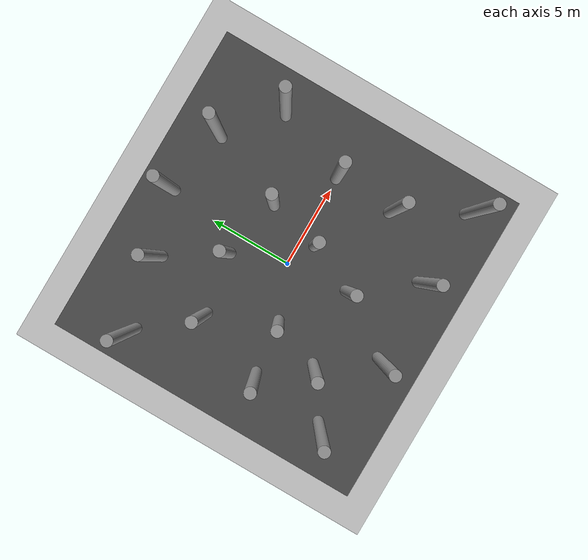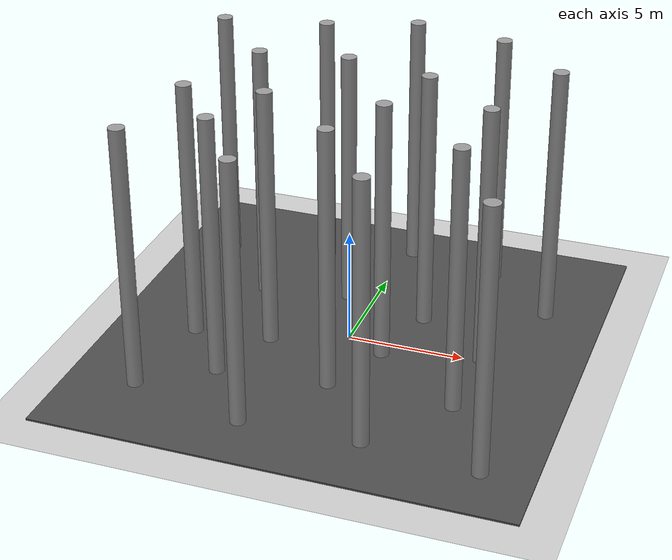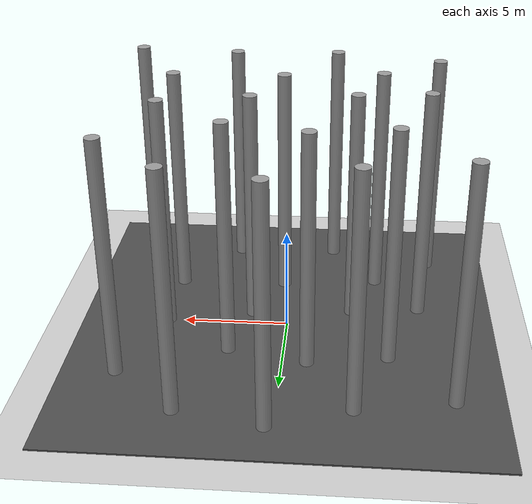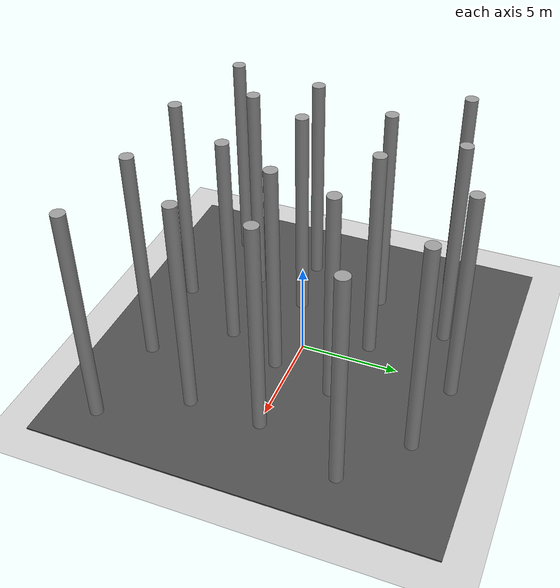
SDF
<sdf version="1.7">
 <world name="default">
  <light name="sun" type="directional">
   <pose>0 0 10 0 -0 0</pose>
   <diffuse>0.8 0.8 0.8 1</diffuse>
   <specular>0.2 0.2 0.2 1</specular>
   <attenuation>
    <range>1000</range>
    <constant>0.9</constant>
    <linear>0.01</linear>
    <quadratic>0.001</quadratic>
   </attenuation>
   <direction>-0.5 0.1 -0.9</direction>
   <spot><inner_angle>0</inner_angle><outer_angle>0</outer_angle><falloff>0</falloff></spot>
  </light>
  <model name="ground_plane">
   <static>1</static>
   <link name="link">
    <collision name="collision">
     <geometry><plane><normal>0 0 1</normal><size>100 100</size></plane></geometry>
     <surface><friction><ode><mu>100</mu><mu2>50</mu2></ode></friction></surface>
    </collision>
    <visual name="visual">
     <cast_shadows>0</cast_shadows>
     <geometry><plane><normal>0 0 1</normal><size>100 100</size></plane></geometry>
     <material>
      <script><uri>file://media/materials/scripts/gazebo.material</uri><name>Gazebo/Grey</name></script>
     </material>
    </visual>
   </link>
  </model>
  <gravity>0 0 -9.8</gravity>
  <magnetic_field>6e-06 2.3e-05 -4.2e-05</magnetic_field>
  <atmosphere type="adiabatic"/>
  <physics type="ode">
   <max_step_size>0.001</max_step_size>
   <real_time_factor>1</real_time_factor>
   <real_time_update_rate>1000</real_time_update_rate>
  </physics>
  <scene><ambient>0.4 0.4 0.4 1</ambient><background>0.7 0.7 0.7 1</background><shadows>1</shadows></scene>
  <audio><device>default</device></audio>
  <spherical_coordinates>
   <surface_model>EARTH_WGS84</surface_model>
   <latitude_deg>0</latitude_deg>
   <longitude_deg>0</longitude_deg>
   <elevation>0</elevation>
   <heading_deg>0</heading_deg>
  </spherical_coordinates>
  <model name="unit_cylinder_clone_0">
   <link name="link">
    <inertial>
     <mass>1</mass>
     <inertia><ixx>0.145833</ixx><ixy>0</ixy><ixz>0</ixz><iyy>0.145833</iyy><iyz>0</iyz><izz>0.125</izz></inertia>
    </inertial>
    <visual name="visual">
     <geometry><cylinder><radius>0.33253</radius><length>11.4242</length></cylinder></geometry>
     <material>
      <script><name>Gazebo/Grey</name><uri>file://media/materials/scripts/gazebo.material</uri></script>
      <shader type="pixel"/>
     </material>
    </visual>
    <collision name="collision">
     <geometry><cylinder><radius>0.33253</radius><length>11.4242</length></cylinder></geometry>
     <surface>
      <friction>
       <ode><mu>1</mu><mu2>1</mu2><fdir1>0 0 0</fdir1><slip1>0</slip1><slip2>0</slip2></ode>
       <torsional>
        <coefficient>1</coefficient>
        <patch_radius>0</patch_radius>
        <surface_radius>0</surface_radius>
        <use_patch_radius>1</use_patch_radius>
        <ode><slip>0</slip></ode>
       </torsional>
      </friction>
      <bounce><restitution_coefficient>0</restitution_coefficient><threshold>1e+06</threshold></bounce>
      <contact>
       <collide_without_contact>0</collide_without_contact>
       <collide_without_contact_bitmask>1</collide_without_contact_bitmask>
       <collide_bitmask>1</collide_bitmask>
       <ode>
        <soft_cfm>0</soft_cfm>
        <soft_erp>0.2</soft_erp>
        <kp>1e+13</kp>
        <kd>1</kd>
        <max_vel>0.01</max_vel>
        <min_depth>0</min_depth>
       </ode>
       <bullet>
        <split_impulse>1</split_impulse>
        <split_impulse_penetration_threshold>-0.01</split_impulse_penetration_threshold>
        <soft_cfm>0</soft_cfm>
        <soft_erp>0.2</soft_erp>
        <kp>1e+13</kp>
        <kd>1</kd>
       </bullet>
      </contact>
     </surface>
    </collision>
   </link>
   <static>1</static>
   <pose>-7.05148 -6.27542 5.7621 -7e-06 1.7e-05 0.065687</pose>
  </model>
  <model name="unit_cylinder_clone_1">
   <link name="link">
    <inertial>
     <mass>1</mass>
     <inertia><ixx>0.145833</ixx><ixy>0</ixy><ixz>0</ixz><iyy>0.145833</iyy><iyz>0</iyz><izz>0.125</izz></inertia>
    </inertial>
    <visual name="visual">
     <geometry><cylinder><radius>0.33253</radius><length>11.4242</length></cylinder></geometry>
     <material>
      <script><name>Gazebo/Grey</name><uri>file://media/materials/scripts/gazebo.material</uri></script>
      <shader type="pixel"/>
     </material>
    </visual>
    <collision name="collision">
     <geometry><cylinder><radius>0.33253</radius><length>11.4242</length></cylinder></geometry>
     <surface>
      <friction>
       <ode><mu>1</mu><mu2>1</mu2><fdir1>0 0 0</fdir1><slip1>0</slip1><slip2>0</slip2></ode>
       <torsional>
        <coefficient>1</coefficient>
        <patch_radius>0</patch_radius>
        <surface_radius>0</surface_radius>
        <use_patch_radius>1</use_patch_radius>
        <ode><slip>0</slip></ode>
       </torsional>
      </friction>
      <bounce><restitution_coefficient>0</restitution_coefficient><threshold>1e+06</threshold></bounce>
      <contact>
       <collide_without_contact>0</collide_without_contact>
       <collide_without_contact_bitmask>1</collide_without_contact_bitmask>
       <collide_bitmask>1</collide_bitmask>
       <ode>
        <soft_cfm>0</soft_cfm>
        <soft_erp>0.2</soft_erp>
        <kp>1e+13</kp>
        <kd>1</kd>
        <max_vel>0.01</max_vel>
        <min_depth>0</min_depth>
       </ode>
       <bullet>
        <split_impulse>1</split_impulse>
        <split_impulse_penetration_threshold>-0.01</split_impulse_penetration_threshold>
        <soft_cfm>0</soft_cfm>
        <soft_erp>0.2</soft_erp>
        <kp>1e+13</kp>
        <kd>1</kd>
       </bullet>
      </contact>
     </surface>
    </collision>
   </link>
   <static>1</static>
   <pose>-4.28958 -4.27878 5.7621 -7e-06 1.7e-05 0.065687</pose>
  </model>
  <model name="unit_cylinder_clone_2">
   <link name="link">
    <inertial>
     <mass>1</mass>
     <inertia><ixx>0.145833</ixx><ixy>0</ixy><ixz>0</ixz><iyy>0.145833</iyy><iyz>0</iyz><izz>0.125</izz></inertia>
    </inertial>
    <visual name="visual">
     <geometry><cylinder><radius>0.33253</radius><length>11.4242</length></cylinder></geometry>
     <material>
      <script><name>Gazebo/Grey</name><uri>file://media/materials/scripts/gazebo.material</uri></script>
      <shader type="pixel"/>
     </material>
    </visual>
    <collision name="collision">
     <geometry><cylinder><radius>0.33253</radius><length>11.4242</length></cylinder></geometry>
     <surface>
      <friction>
       <ode><mu>1</mu><mu2>1</mu2><fdir1>0 0 0</fdir1><slip1>0</slip1><slip2>0</slip2></ode>
       <torsional>
        <coefficient>1</coefficient>
        <patch_radius>0</patch_radius>
        <surface_radius>0</surface_radius>
        <use_patch_radius>1</use_patch_radius>
        <ode><slip>0</slip></ode>
       </torsional>
      </friction>
      <bounce><restitution_coefficient>0</restitution_coefficient><threshold>1e+06</threshold></bounce>
      <contact>
       <collide_without_contact>0</collide_without_contact>
       <collide_without_contact_bitmask>1</collide_without_contact_bitmask>
       <collide_bitmask>1</collide_bitmask>
       <ode>
        <soft_cfm>0</soft_cfm>
        <soft_erp>0.2</soft_erp>
        <kp>1e+13</kp>
        <kd>1</kd>
        <max_vel>0.01</max_vel>
        <min_depth>0</min_depth>
       </ode>
       <bullet>
        <split_impulse>1</split_impulse>
        <split_impulse_penetration_threshold>-0.01</split_impulse_penetration_threshold>
        <soft_cfm>0</soft_cfm>
        <soft_erp>0.2</soft_erp>
        <kp>1e+13</kp>
        <kd>1</kd>
       </bullet>
      </contact>
     </surface>
    </collision>
   </link>
   <static>1</static>
   <pose>-6.40851 -1.66209 5.7621 -7e-06 1.7e-05 0.065687</pose>
  </model>
  <model name="unit_cylinder_clone_3">
   <link name="link">
    <inertial>
     <mass>1</mass>
     <inertia><ixx>0.145833</ixx><ixy>0</ixy><ixz>0</ixz><iyy>0.145833</iyy><iyz>0</iyz><izz>0.125</izz></inertia>
    </inertial>
    <visual name="visual">
     <geometry><cylinder><radius>0.33253</radius><length>11.4242</length></cylinder></geometry>
     <material>
      <script><name>Gazebo/Grey</name><uri>file://media/materials/scripts/gazebo.material</uri></script>
      <shader type="pixel"/>
     </material>
    </visual>
    <collision name="collision">
     <geometry><cylinder><radius>0.33253</radius><length>11.4242</length></cylinder></geometry>
     <surface>
      <friction>
       <ode><mu>1</mu><mu2>1</mu2><fdir1>0 0 0</fdir1><slip1>0</slip1><slip2>0</slip2></ode>
       <torsional>
        <coefficient>1</coefficient>
        <patch_radius>0</patch_radius>
        <surface_radius>0</surface_radius>
        <use_patch_radius>1</use_patch_radius>
        <ode><slip>0</slip></ode>
       </torsional>
      </friction>
      <bounce><restitution_coefficient>0</restitution_coefficient><threshold>1e+06</threshold></bounce>
      <contact>
       <collide_without_contact>0</collide_without_contact>
       <collide_without_contact_bitmask>1</collide_without_contact_bitmask>
       <collide_bitmask>1</collide_bitmask>
       <ode>
        <soft_cfm>0</soft_cfm>
        <soft_erp>0.2</soft_erp>
        <kp>1e+13</kp>
        <kd>1</kd>
        <max_vel>0.01</max_vel>
        <min_depth>0</min_depth>
       </ode>
       <bullet>
        <split_impulse>1</split_impulse>
        <split_impulse_penetration_threshold>-0.01</split_impulse_penetration_threshold>
        <soft_cfm>0</soft_cfm>
        <soft_erp>0.2</soft_erp>
        <kp>1e+13</kp>
        <kd>1</kd>
       </bullet>
      </contact>
     </surface>
    </collision>
   </link>
   <static>1</static>
   <pose>-3.11408 -1.2626 5.7621 -7e-06 1.7e-05 0.065687</pose>
  </model>
  <model name="unit_cylinder_clone_4">
   <link name="link">
    <inertial>
     <mass>1</mass>
     <inertia><ixx>0.145833</ixx><ixy>0</ixy><ixz>0</ixz><iyy>0.145833</iyy><iyz>0</iyz><izz>0.125</izz></inertia>
    </inertial>
    <visual name="visual">
     <geometry><cylinder><radius>0.33253</radius><length>11.4242</length></cylinder></geometry>
     <material>
      <script><name>Gazebo/Grey</name><uri>file://media/materials/scripts/gazebo.material</uri></script>
      <shader type="pixel"/>
     </material>
    </visual>
    <collision name="collision">
     <geometry><cylinder><radius>0.33253</radius><length>11.4242</length></cylinder></geometry>
     <surface>
      <friction>
       <ode><mu>1</mu><mu2>1</mu2><fdir1>0 0 0</fdir1><slip1>0</slip1><slip2>0</slip2></ode>
       <torsional>
        <coefficient>1</coefficient>
        <patch_radius>0</patch_radius>
        <surface_radius>0</surface_radius>
        <use_patch_radius>1</use_patch_radius>
        <ode><slip>0</slip></ode>
       </torsional>
      </friction>
      <bounce><restitution_coefficient>0</restitution_coefficient><threshold>1e+06</threshold></bounce>
      <contact>
       <collide_without_contact>0</collide_without_contact>
       <collide_without_contact_bitmask>1</collide_without_contact_bitmask>
       <collide_bitmask>1</collide_bitmask>
       <ode>
        <soft_cfm>0</soft_cfm>
        <soft_erp>0.2</soft_erp>
        <kp>1e+13</kp>
        <kd>1</kd>
        <max_vel>0.01</max_vel>
        <min_depth>0</min_depth>
       </ode>
       <bullet>
        <split_impulse>1</split_impulse>
        <split_impulse_penetration_threshold>-0.01</split_impulse_penetration_threshold>
        <soft_cfm>0</soft_cfm>
        <soft_erp>0.2</soft_erp>
        <kp>1e+13</kp>
        <kd>1</kd>
       </bullet>
      </contact>
     </surface>
    </collision>
   </link>
   <static>1</static>
   <pose>-4.87788 2.59729 5.7621 -7e-06 1.7e-05 0.065687</pose>
  </model>
  <model name="unit_cylinder_clone_5">
   <link name="link">
    <inertial>
     <mass>1</mass>
     <inertia><ixx>0.145833</ixx><ixy>0</ixy><ixz>0</ixz><iyy>0.145833</iyy><iyz>0</iyz><izz>0.125</izz></inertia>
    </inertial>
    <visual name="visual">
     <geometry><cylinder><radius>0.33253</radius><length>11.4242</length></cylinder></geometry>
     <material>
      <script><name>Gazebo/Grey</name><uri>file://media/materials/scripts/gazebo.material</uri></script>
      <shader type="pixel"/>
     </material>
    </visual>
    <collision name="collision">
     <geometry><cylinder><radius>0.33253</radius><length>11.4242</length></cylinder></geometry>
     <surface>
      <friction>
       <ode><mu>1</mu><mu2>1</mu2><fdir1>0 0 0</fdir1><slip1>0</slip1><slip2>0</slip2></ode>
       <torsional>
        <coefficient>1</coefficient>
        <patch_radius>0</patch_radius>
        <surface_radius>0</surface_radius>
        <use_patch_radius>1</use_patch_radius>
        <ode><slip>0</slip></ode>
       </torsional>
      </friction>
      <bounce><restitution_coefficient>0</restitution_coefficient><threshold>1e+06</threshold></bounce>
      <contact>
       <collide_without_contact>0</collide_without_contact>
       <collide_without_contact_bitmask>1</collide_without_contact_bitmask>
       <collide_bitmask>1</collide_bitmask>
       <ode>
        <soft_cfm>0</soft_cfm>
        <soft_erp>0.2</soft_erp>
        <kp>1e+13</kp>
        <kd>1</kd>
        <max_vel>0.01</max_vel>
        <min_depth>0</min_depth>
       </ode>
       <bullet>
        <split_impulse>1</split_impulse>
        <split_impulse_penetration_threshold>-0.01</split_impulse_penetration_threshold>
        <soft_cfm>0</soft_cfm>
        <soft_erp>0.2</soft_erp>
        <kp>1e+13</kp>
        <kd>1</kd>
       </bullet>
      </contact>
     </surface>
    </collision>
   </link>
   <static>1</static>
   <pose>-3.34703 6.55708 5.7621 -7e-06 1.7e-05 0.065687</pose>
  </model>
  <model name="unit_cylinder_clone_6">
   <link name="link">
    <inertial>
     <mass>1</mass>
     <inertia><ixx>0.145833</ixx><ixy>0</ixy><ixz>0</ixz><iyy>0.145833</iyy><iyz>0</iyz><izz>0.125</izz></inertia>
    </inertial>
    <visual name="visual">
     <geometry><cylinder><radius>0.33253</radius><length>11.4242</length></cylinder></geometry>
     <material>
      <script><name>Gazebo/Grey</name><uri>file://media/materials/scripts/gazebo.material</uri></script>
      <shader type="pixel"/>
     </material>
    </visual>
    <collision name="collision">
     <geometry><cylinder><radius>0.33253</radius><length>11.4242</length></cylinder></geometry>
     <surface>
      <friction>
       <ode><mu>1</mu><mu2>1</mu2><fdir1>0 0 0</fdir1><slip1>0</slip1><slip2>0</slip2></ode>
       <torsional>
        <coefficient>1</coefficient>
        <patch_radius>0</patch_radius>
        <surface_radius>0</surface_radius>
        <use_patch_radius>1</use_patch_radius>
        <ode><slip>0</slip></ode>
       </torsional>
      </friction>
      <bounce><restitution_coefficient>0</restitution_coefficient><threshold>1e+06</threshold></bounce>
      <contact>
       <collide_without_contact>0</collide_without_contact>
       <collide_without_contact_bitmask>1</collide_without_contact_bitmask>
       <collide_bitmask>1</collide_bitmask>
       <ode>
        <soft_cfm>0</soft_cfm>
        <soft_erp>0.2</soft_erp>
        <kp>1e+13</kp>
        <kd>1</kd>
        <max_vel>0.01</max_vel>
        <min_depth>0</min_depth>
       </ode>
       <bullet>
        <split_impulse>1</split_impulse>
        <split_impulse_penetration_threshold>-0.01</split_impulse_penetration_threshold>
        <soft_cfm>0</soft_cfm>
        <soft_erp>0.2</soft_erp>
        <kp>1e+13</kp>
        <kd>1</kd>
       </bullet>
      </contact>
     </surface>
    </collision>
   </link>
   <static>1</static>
   <pose>-1.15093 3.19634 5.7621 -7e-06 1.7e-05 0.065687</pose>
  </model>
  <model name="unit_cylinder_clone_7">
   <link name="link">
    <inertial>
     <mass>1</mass>
     <inertia><ixx>0.145833</ixx><ixy>0</ixy><ixz>0</ixz><iyy>0.145833</iyy><iyz>0</iyz><izz>0.125</izz></inertia>
    </inertial>
    <visual name="visual">
     <geometry><cylinder><radius>0.33253</radius><length>11.4242</length></cylinder></geometry>
     <material>
      <script><name>Gazebo/Grey</name><uri>file://media/materials/scripts/gazebo.material</uri></script>
      <shader type="pixel"/>
     </material>
    </visual>
    <collision name="collision">
     <geometry><cylinder><radius>0.33253</radius><length>11.4242</length></cylinder></geometry>
     <surface>
      <friction>
       <ode><mu>1</mu><mu2>1</mu2><fdir1>0 0 0</fdir1><slip1>0</slip1><slip2>0</slip2></ode>
       <torsional>
        <coefficient>1</coefficient>
        <patch_radius>0</patch_radius>
        <surface_radius>0</surface_radius>
        <use_patch_radius>1</use_patch_radius>
        <ode><slip>0</slip></ode>
       </torsional>
      </friction>
      <bounce><restitution_coefficient>0</restitution_coefficient><threshold>1e+06</threshold></bounce>
      <contact>
       <collide_without_contact>0</collide_without_contact>
       <collide_without_contact_bitmask>1</collide_without_contact_bitmask>
       <collide_bitmask>1</collide_bitmask>
       <ode>
        <soft_cfm>0</soft_cfm>
        <soft_erp>0.2</soft_erp>
        <kp>1e+13</kp>
        <kd>1</kd>
        <max_vel>0.01</max_vel>
        <min_depth>0</min_depth>
       </ode>
       <bullet>
        <split_impulse>1</split_impulse>
        <split_impulse_penetration_threshold>-0.01</split_impulse_penetration_threshold>
        <soft_cfm>0</soft_cfm>
        <soft_erp>0.2</soft_erp>
        <kp>1e+13</kp>
        <kd>1</kd>
       </bullet>
      </contact>
     </surface>
    </collision>
   </link>
   <static>1</static>
   <pose>0.379585 -3.75829 5.7621 -7e-06 1.7e-05 0.065687</pose>
  </model>
  <model name="unit_cylinder_clone_8">
   <link name="link">
    <inertial>
     <mass>1</mass>
     <inertia><ixx>0.145833</ixx><ixy>0</ixy><ixz>0</ixz><iyy>0.145833</iyy><iyz>0</iyz><izz>0.125</izz></inertia>
    </inertial>
    <visual name="visual">
     <geometry><cylinder><radius>0.33253</radius><length>11.4242</length></cylinder></geometry>
     <material>
      <script><name>Gazebo/Grey</name><uri>file://media/materials/scripts/gazebo.material</uri></script>
      <shader type="pixel"/>
     </material>
    </visual>
    <collision name="collision">
     <geometry><cylinder><radius>0.33253</radius><length>11.4242</length></cylinder></geometry>
     <surface>
      <friction>
       <ode><mu>1</mu><mu2>1</mu2><fdir1>0 0 0</fdir1><slip1>0</slip1><slip2>0</slip2></ode>
       <torsional>
        <coefficient>1</coefficient>
        <patch_radius>0</patch_radius>
        <surface_radius>0</surface_radius>
        <use_patch_radius>1</use_patch_radius>
        <ode><slip>0</slip></ode>
       </torsional>
      </friction>
      <bounce><restitution_coefficient>0</restitution_coefficient><threshold>1e+06</threshold></bounce>
      <contact>
       <collide_without_contact>0</collide_without_contact>
       <collide_without_contact_bitmask>1</collide_without_contact_bitmask>
       <collide_bitmask>1</collide_bitmask>
       <ode>
        <soft_cfm>0</soft_cfm>
        <soft_erp>0.2</soft_erp>
        <kp>1e+13</kp>
        <kd>1</kd>
        <max_vel>0.01</max_vel>
        <min_depth>0</min_depth>
       </ode>
       <bullet>
        <split_impulse>1</split_impulse>
        <split_impulse_penetration_threshold>-0.01</split_impulse_penetration_threshold>
        <soft_cfm>0</soft_cfm>
        <soft_erp>0.2</soft_erp>
        <kp>1e+13</kp>
        <kd>1</kd>
       </bullet>
      </contact>
     </surface>
    </collision>
   </link>
   <static>1</static>
   <pose>-2.04946 -7.38512 5.7621 -7e-06 1.7e-05 0.065687</pose>
  </model>
  <model name="unit_cylinder_clone_9">
   <link name="link">
    <inertial>
     <mass>1</mass>
     <inertia><ixx>0.145833</ixx><ixy>0</ixy><ixz>0</ixz><iyy>0.145833</iyy><iyz>0</iyz><izz>0.125</izz></inertia>
    </inertial>
    <visual name="visual">
     <geometry><cylinder><radius>0.33253</radius><length>11.4242</length></cylinder></geometry>
     <material>
      <script><name>Gazebo/Grey</name><uri>file://media/materials/scripts/gazebo.material</uri></script>
      <shader type="pixel"/>
     </material>
    </visual>
    <collision name="collision">
     <geometry><cylinder><radius>0.33253</radius><length>11.4242</length></cylinder></geometry>
     <surface>
      <friction>
       <ode><mu>1</mu><mu2>1</mu2><fdir1>0 0 0</fdir1><slip1>0</slip1><slip2>0</slip2></ode>
       <torsional>
        <coefficient>1</coefficient>
        <patch_radius>0</patch_radius>
        <surface_radius>0</surface_radius>
        <use_patch_radius>1</use_patch_radius>
        <ode><slip>0</slip></ode>
       </torsional>
      </friction>
      <bounce><restitution_coefficient>0</restitution_coefficient><threshold>1e+06</threshold></bounce>
      <contact>
       <collide_without_contact>0</collide_without_contact>
       <collide_without_contact_bitmask>1</collide_without_contact_bitmask>
       <collide_bitmask>1</collide_bitmask>
       <ode>
        <soft_cfm>0</soft_cfm>
        <soft_erp>0.2</soft_erp>
        <kp>1e+13</kp>
        <kd>1</kd>
        <max_vel>0.01</max_vel>
        <min_depth>0</min_depth>
       </ode>
       <bullet>
        <split_impulse>1</split_impulse>
        <split_impulse_penetration_threshold>-0.01</split_impulse_penetration_threshold>
        <soft_cfm>0</soft_cfm>
        <soft_erp>0.2</soft_erp>
        <kp>1e+13</kp>
        <kd>1</kd>
       </bullet>
      </contact>
     </surface>
    </collision>
   </link>
   <static>1</static>
   <pose>2.97517 -7.15228 5.7621 -7e-06 1.7e-05 0.065687</pose>
  </model>
  <model name="unit_cylinder_clone_10">
   <link name="link">
    <inertial>
     <mass>1</mass>
     <inertia><ixx>0.145833</ixx><ixy>0</ixy><ixz>0</ixz><iyy>0.145833</iyy><iyz>0</iyz><izz>0.125</izz></inertia>
    </inertial>
    <visual name="visual">
     <geometry><cylinder><radius>0.33253</radius><length>11.4242</length></cylinder></geometry>
     <material>
      <script><name>Gazebo/Grey</name><uri>file://media/materials/scripts/gazebo.material</uri></script>
      <shader type="pixel"/>
     </material>
    </visual>
    <collision name="collision">
     <geometry><cylinder><radius>0.33253</radius><length>11.4242</length></cylinder></geometry>
     <surface>
      <friction>
       <ode><mu>1</mu><mu2>1</mu2><fdir1>0 0 0</fdir1><slip1>0</slip1><slip2>0</slip2></ode>
       <torsional>
        <coefficient>1</coefficient>
        <patch_radius>0</patch_radius>
        <surface_radius>0</surface_radius>
        <use_patch_radius>1</use_patch_radius>
        <ode><slip>0</slip></ode>
       </torsional>
      </friction>
      <bounce><restitution_coefficient>0</restitution_coefficient><threshold>1e+06</threshold></bounce>
      <contact>
       <collide_without_contact>0</collide_without_contact>
       <collide_without_contact_bitmask>1</collide_without_contact_bitmask>
       <collide_bitmask>1</collide_bitmask>
       <ode>
        <soft_cfm>0</soft_cfm>
        <soft_erp>0.2</soft_erp>
        <kp>1e+13</kp>
        <kd>1</kd>
        <max_vel>0.01</max_vel>
        <min_depth>0</min_depth>
       </ode>
       <bullet>
        <split_impulse>1</split_impulse>
        <split_impulse_penetration_threshold>-0.01</split_impulse_penetration_threshold>
        <soft_cfm>0</soft_cfm>
        <soft_erp>0.2</soft_erp>
        <kp>1e+13</kp>
        <kd>1</kd>
       </bullet>
      </contact>
     </surface>
    </collision>
   </link>
   <static>1</static>
   <pose>5.63727 -3.62513 5.7621 -7e-06 1.7e-05 0.065687</pose>
  </model>
  <model name="unit_cylinder_clone_11">
   <link name="link">
    <inertial>
     <mass>1</mass>
     <inertia><ixx>0.145833</ixx><ixy>0</ixy><ixz>0</ixz><iyy>0.145833</iyy><iyz>0</iyz><izz>0.125</izz></inertia>
    </inertial>
    <visual name="visual">
     <geometry><cylinder><radius>0.33253</radius><length>11.4242</length></cylinder></geometry>
     <material>
      <script><name>Gazebo/Grey</name><uri>file://media/materials/scripts/gazebo.material</uri></script>
      <shader type="pixel"/>
     </material>
    </visual>
    <collision name="collision">
     <geometry><cylinder><radius>0.33253</radius><length>11.4242</length></cylinder></geometry>
     <surface>
      <friction>
       <ode><mu>1</mu><mu2>1</mu2><fdir1>0 0 0</fdir1><slip1>0</slip1><slip2>0</slip2></ode>
       <torsional>
        <coefficient>1</coefficient>
        <patch_radius>0</patch_radius>
        <surface_radius>0</surface_radius>
        <use_patch_radius>1</use_patch_radius>
        <ode><slip>0</slip></ode>
       </torsional>
      </friction>
      <bounce><restitution_coefficient>0</restitution_coefficient><threshold>1e+06</threshold></bounce>
      <contact>
       <collide_without_contact>0</collide_without_contact>
       <collide_without_contact_bitmask>1</collide_without_contact_bitmask>
       <collide_bitmask>1</collide_bitmask>
       <ode>
        <soft_cfm>0</soft_cfm>
        <soft_erp>0.2</soft_erp>
        <kp>1e+13</kp>
        <kd>1</kd>
        <max_vel>0.01</max_vel>
        <min_depth>0</min_depth>
       </ode>
       <bullet>
        <split_impulse>1</split_impulse>
        <split_impulse_penetration_threshold>-0.01</split_impulse_penetration_threshold>
        <soft_cfm>0</soft_cfm>
        <soft_erp>0.2</soft_erp>
        <kp>1e+13</kp>
        <kd>1</kd>
       </bullet>
      </contact>
     </surface>
    </collision>
   </link>
   <static>1</static>
   <pose>2.5758 2.3976 5.7621 -7e-06 1.7e-05 0.065687</pose>
  </model>
  <model name="unit_cylinder_clone_12">
   <link name="link">
    <inertial>
     <mass>1</mass>
     <inertia><ixx>0.145833</ixx><ixy>0</ixy><ixz>0</ixz><iyy>0.145833</iyy><iyz>0</iyz><izz>0.125</izz></inertia>
    </inertial>
    <visual name="visual">
     <geometry><cylinder><radius>0.33253</radius><length>11.4242</length></cylinder></geometry>
     <material>
      <script><name>Gazebo/Grey</name><uri>file://media/materials/scripts/gazebo.material</uri></script>
      <shader type="pixel"/>
     </material>
    </visual>
    <collision name="collision">
     <geometry><cylinder><radius>0.33253</radius><length>11.4242</length></cylinder></geometry>
     <surface>
      <friction>
       <ode><mu>1</mu><mu2>1</mu2><fdir1>0 0 0</fdir1><slip1>0</slip1><slip2>0</slip2></ode>
       <torsional>
        <coefficient>1</coefficient>
        <patch_radius>0</patch_radius>
        <surface_radius>0</surface_radius>
        <use_patch_radius>1</use_patch_radius>
        <ode><slip>0</slip></ode>
       </torsional>
      </friction>
      <bounce><restitution_coefficient>0</restitution_coefficient><threshold>1e+06</threshold></bounce>
      <contact>
       <collide_without_contact>0</collide_without_contact>
       <collide_without_contact_bitmask>1</collide_without_contact_bitmask>
       <collide_bitmask>1</collide_bitmask>
       <ode>
        <soft_cfm>0</soft_cfm>
        <soft_erp>0.2</soft_erp>
        <kp>1e+13</kp>
        <kd>1</kd>
        <max_vel>0.01</max_vel>
        <min_depth>0</min_depth>
       </ode>
       <bullet>
        <split_impulse>1</split_impulse>
        <split_impulse_penetration_threshold>-0.01</split_impulse_penetration_threshold>
        <soft_cfm>0</soft_cfm>
        <soft_erp>0.2</soft_erp>
        <kp>1e+13</kp>
        <kd>1</kd>
       </bullet>
      </contact>
     </surface>
    </collision>
   </link>
   <static>1</static>
   <pose>4.43916 7.0895 5.7621 -7e-06 1.7e-05 0.065687</pose>
  </model>
  <model name="unit_cylinder_clone_13">
   <link name="link">
    <inertial>
     <mass>1</mass>
     <inertia><ixx>0.145833</ixx><ixy>0</ixy><ixz>0</ixz><iyy>0.145833</iyy><iyz>0</iyz><izz>0.125</izz></inertia>
    </inertial>
    <visual name="visual">
     <geometry><cylinder><radius>0.33253</radius><length>11.4242</length></cylinder></geometry>
     <material>
      <script><name>Gazebo/Grey</name><uri>file://media/materials/scripts/gazebo.material</uri></script>
      <shader type="pixel"/>
     </material>
    </visual>
    <collision name="collision">
     <geometry><cylinder><radius>0.33253</radius><length>11.4242</length></cylinder></geometry>
     <surface>
      <friction>
       <ode><mu>1</mu><mu2>1</mu2><fdir1>0 0 0</fdir1><slip1>0</slip1><slip2>0</slip2></ode>
       <torsional>
        <coefficient>1</coefficient>
        <patch_radius>0</patch_radius>
        <surface_radius>0</surface_radius>
        <use_patch_radius>1</use_patch_radius>
        <ode><slip>0</slip></ode>
       </torsional>
      </friction>
      <bounce><restitution_coefficient>0</restitution_coefficient><threshold>1e+06</threshold></bounce>
      <contact>
       <collide_without_contact>0</collide_without_contact>
       <collide_without_contact_bitmask>1</collide_without_contact_bitmask>
       <collide_bitmask>1</collide_bitmask>
       <ode>
        <soft_cfm>0</soft_cfm>
        <soft_erp>0.2</soft_erp>
        <kp>1e+13</kp>
        <kd>1</kd>
        <max_vel>0.01</max_vel>
        <min_depth>0</min_depth>
       </ode>
       <bullet>
        <split_impulse>1</split_impulse>
        <split_impulse_penetration_threshold>-0.01</split_impulse_penetration_threshold>
        <soft_cfm>0</soft_cfm>
        <soft_erp>0.2</soft_erp>
        <kp>1e+13</kp>
        <kd>1</kd>
       </bullet>
      </contact>
     </surface>
    </collision>
   </link>
   <static>1</static>
   <pose>5.77021 0.068339 5.7621 -7e-06 1.7e-05 0.065687</pose>
  </model>
  <model name="unit_cylinder_clone_14">
   <link name="link">
    <inertial>
     <mass>1</mass>
     <inertia><ixx>0.145833</ixx><ixy>0</ixy><ixz>0</ixz><iyy>0.145833</iyy><iyz>0</iyz><izz>0.125</izz></inertia>
    </inertial>
    <visual name="visual">
     <geometry><cylinder><radius>0.33253</radius><length>11.4242</length></cylinder></geometry>
     <material>
      <script><name>Gazebo/Grey</name><uri>file://media/materials/scripts/gazebo.material</uri></script>
      <shader type="pixel"/>
     </material>
    </visual>
    <collision name="collision">
     <geometry><cylinder><radius>0.33253</radius><length>11.4242</length></cylinder></geometry>
     <surface>
      <friction>
       <ode><mu>1</mu><mu2>1</mu2><fdir1>0 0 0</fdir1><slip1>0</slip1><slip2>0</slip2></ode>
       <torsional>
        <coefficient>1</coefficient>
        <patch_radius>0</patch_radius>
        <surface_radius>0</surface_radius>
        <use_patch_radius>1</use_patch_radius>
        <ode><slip>0</slip></ode>
       </torsional>
      </friction>
      <bounce><restitution_coefficient>0</restitution_coefficient><threshold>1e+06</threshold></bounce>
      <contact>
       <collide_without_contact>0</collide_without_contact>
       <collide_without_contact_bitmask>1</collide_without_contact_bitmask>
       <collide_bitmask>1</collide_bitmask>
       <ode>
        <soft_cfm>0</soft_cfm>
        <soft_erp>0.2</soft_erp>
        <kp>1e+13</kp>
        <kd>1</kd>
        <max_vel>0.01</max_vel>
        <min_depth>0</min_depth>
       </ode>
       <bullet>
        <split_impulse>1</split_impulse>
        <split_impulse_penetration_threshold>-0.01</split_impulse_penetration_threshold>
        <soft_cfm>0</soft_cfm>
        <soft_erp>0.2</soft_erp>
        <kp>1e+13</kp>
        <kd>1</kd>
       </bullet>
      </contact>
     </surface>
    </collision>
   </link>
   <static>1</static>
   <pose>7.46749 4.49402 5.7621 -7e-06 1.7e-05 0.065687</pose>
  </model>
  <model name="unit_cylinder_clone_15">
   <link name="link">
    <inertial>
     <mass>1</mass>
     <inertia><ixx>0.145833</ixx><ixy>0</ixy><ixz>0</ixz><iyy>0.145833</iyy><iyz>0</iyz><izz>0.125</izz></inertia>
    </inertial>
    <visual name="visual">
     <geometry><cylinder><radius>0.33253</radius><length>11.4242</length></cylinder></geometry>
     <material>
      <script><name>Gazebo/Grey</name><uri>file://media/materials/scripts/gazebo.material</uri></script>
      <shader type="pixel"/>
     </material>
    </visual>
    <collision name="collision">
     <geometry><cylinder><radius>0.33253</radius><length>11.4242</length></cylinder></geometry>
     <surface>
      <friction>
       <ode><mu>1</mu><mu2>1</mu2><fdir1>0 0 0</fdir1><slip1>0</slip1><slip2>0</slip2></ode>
       <torsional>
        <coefficient>1</coefficient>
        <patch_radius>0</patch_radius>
        <surface_radius>0</surface_radius>
        <use_patch_radius>1</use_patch_radius>
        <ode><slip>0</slip></ode>
       </torsional>
      </friction>
      <bounce><restitution_coefficient>0</restitution_coefficient><threshold>1e+06</threshold></bounce>
      <contact>
       <collide_without_contact>0</collide_without_contact>
       <collide_without_contact_bitmask>1</collide_without_contact_bitmask>
       <collide_bitmask>1</collide_bitmask>
       <ode>
        <soft_cfm>0</soft_cfm>
        <soft_erp>0.2</soft_erp>
        <kp>1e+13</kp>
        <kd>1</kd>
        <max_vel>0.01</max_vel>
        <min_depth>0</min_depth>
       </ode>
       <bullet>
        <split_impulse>1</split_impulse>
        <split_impulse_penetration_threshold>-0.01</split_impulse_penetration_threshold>
        <soft_cfm>0</soft_cfm>
        <soft_erp>0.2</soft_erp>
        <kp>1e+13</kp>
        <kd>1</kd>
       </bullet>
      </contact>
     </surface>
    </collision>
   </link>
   <static>1</static>
   <pose>7.83338 -7.5185 5.7621 -7e-06 1.7e-05 0.065687</pose>
  </model>
  <model name="unit_cylinder_clone_16">
   <link name="link">
    <inertial>
     <mass>1</mass>
     <inertia><ixx>0.145833</ixx><ixy>0</ixy><ixz>0</ixz><iyy>0.145833</iyy><iyz>0</iyz><izz>0.125</izz></inertia>
    </inertial>
    <visual name="visual">
     <geometry><cylinder><radius>0.33253</radius><length>11.4242</length></cylinder></geometry>
     <material>
      <script><name>Gazebo/Grey</name><uri>file://media/materials/scripts/gazebo.material</uri></script>
      <shader type="pixel"/>
     </material>
    </visual>
    <collision name="collision">
     <geometry><cylinder><radius>0.33253</radius><length>11.4242</length></cylinder></geometry>
     <surface>
      <friction>
       <ode><mu>1</mu><mu2>1</mu2><fdir1>0 0 0</fdir1><slip1>0</slip1><slip2>0</slip2></ode>
       <torsional>
        <coefficient>1</coefficient>
        <patch_radius>0</patch_radius>
        <surface_radius>0</surface_radius>
        <use_patch_radius>1</use_patch_radius>
        <ode><slip>0</slip></ode>
       </torsional>
      </friction>
      <bounce><restitution_coefficient>0</restitution_coefficient><threshold>1e+06</threshold></bounce>
      <contact>
       <collide_without_contact>0</collide_without_contact>
       <collide_without_contact_bitmask>1</collide_without_contact_bitmask>
       <collide_bitmask>1</collide_bitmask>
       <ode>
        <soft_cfm>0</soft_cfm>
        <soft_erp>0.2</soft_erp>
        <kp>1e+13</kp>
        <kd>1</kd>
        <max_vel>0.01</max_vel>
        <min_depth>0</min_depth>
       </ode>
       <bullet>
        <split_impulse>1</split_impulse>
        <split_impulse_penetration_threshold>-0.01</split_impulse_penetration_threshold>
        <soft_cfm>0</soft_cfm>
        <soft_erp>0.2</soft_erp>
        <kp>1e+13</kp>
        <kd>1</kd>
       </bullet>
      </contact>
     </surface>
    </collision>
   </link>
   <static>1</static>
   <pose>1.71064 -0.83008 5.7621 -7e-06 1.7e-05 0.065687</pose>
  </model>
  <model name="unit_cylinder_clone_17">
   <link name="link">
    <inertial>
     <mass>1</mass>
     <inertia><ixx>0.145833</ixx><ixy>0</ixy><ixz>0</ixz><iyy>0.145833</iyy><iyz>0</iyz><izz>0.125</izz></inertia>
    </inertial>
    <visual name="visual">
     <geometry><cylinder><radius>0.33253</radius><length>11.4242</length></cylinder></geometry>
     <material>
      <script><name>Gazebo/Grey</name><uri>file://media/materials/scripts/gazebo.material</uri></script>
      <shader type="pixel"/>
     </material>
    </visual>
    <collision name="collision">
     <geometry><cylinder><radius>0.33253</radius><length>11.4242</length></cylinder></geometry>
     <surface>
      <friction>
       <ode><mu>1</mu><mu2>1</mu2><fdir1>0 0 0</fdir1><slip1>0</slip1><slip2>0</slip2></ode>
       <torsional>
        <coefficient>1</coefficient>
        <patch_radius>0</patch_radius>
        <surface_radius>0</surface_radius>
        <use_patch_radius>1</use_patch_radius>
        <ode><slip>0</slip></ode>
       </torsional>
      </friction>
      <bounce><restitution_coefficient>0</restitution_coefficient><threshold>1e+06</threshold></bounce>
      <contact>
       <collide_without_contact>0</collide_without_contact>
       <collide_without_contact_bitmask>1</collide_without_contact_bitmask>
       <collide_bitmask>1</collide_bitmask>
       <ode>
        <soft_cfm>0</soft_cfm>
        <soft_erp>0.2</soft_erp>
        <kp>1e+13</kp>
        <kd>1</kd>
        <max_vel>0.01</max_vel>
        <min_depth>0</min_depth>
       </ode>
       <bullet>
        <split_impulse>1</split_impulse>
        <split_impulse_penetration_threshold>-0.01</split_impulse_penetration_threshold>
        <soft_cfm>0</soft_cfm>
        <soft_erp>0.2</soft_erp>
        <kp>1e+13</kp>
        <kd>1</kd>
       </bullet>
      </contact>
     </surface>
    </collision>
   </link>
   <static>1</static>
   <pose>0.379585 7.88802 5.7621 -7e-06 1.7e-05 0.065687</pose>
  </model>
  <model name="unit_cylinder_clone_18">
   <link name="link">
    <inertial>
     <mass>1</mass>
     <inertia><ixx>0.145833</ixx><ixy>0</ixy><ixz>0</ixz><iyy>0.145833</iyy><iyz>0</iyz><izz>0.125</izz></inertia>
    </inertial>
    <visual name="visual">
     <geometry><cylinder><radius>0.33253</radius><length>11.4242</length></cylinder></geometry>
     <material>
      <script><name>Gazebo/Grey</name><uri>file://media/materials/scripts/gazebo.material</uri></script>
      <shader type="pixel"/>
     </material>
    </visual>
    <collision name="collision">
     <geometry><cylinder><radius>0.33253</radius><length>11.4242</length></cylinder></geometry>
     <surface>
      <friction>
       <ode><mu>1</mu><mu2>1</mu2><fdir1>0 0 0</fdir1><slip1>0</slip1><slip2>0</slip2></ode>
       <torsional>
        <coefficient>1</coefficient>
        <patch_radius>0</patch_radius>
        <surface_radius>0</surface_radius>
        <use_patch_radius>1</use_patch_radius>
        <ode><slip>0</slip></ode>
       </torsional>
      </friction>
      <bounce><restitution_coefficient>0</restitution_coefficient><threshold>1e+06</threshold></bounce>
      <contact>
       <collide_without_contact>0</collide_without_contact>
       <collide_without_contact_bitmask>1</collide_without_contact_bitmask>
       <collide_bitmask>1</collide_bitmask>
       <ode>
        <soft_cfm>0</soft_cfm>
        <soft_erp>0.2</soft_erp>
        <kp>1e+13</kp>
        <kd>1</kd>
        <max_vel>0.01</max_vel>
        <min_depth>0</min_depth>
       </ode>
       <bullet>
        <split_impulse>1</split_impulse>
        <split_impulse_penetration_threshold>-0.01</split_impulse_penetration_threshold>
        <soft_cfm>0</soft_cfm>
        <soft_erp>0.2</soft_erp>
        <kp>1e+13</kp>
        <kd>1</kd>
       </bullet>
      </contact>
     </surface>
    </collision>
   </link>
   <static>1</static>
   <pose>-7.77294 5.72529 5.7621 -7e-06 1.7e-05 0.065687</pose>
  </model>
  <model name="asphalt_plane">
   <link name="link">
    <visual name="visual">
     <cast_shadows>0</cast_shadows>
     <geometry><box><size>20 20 0.1</size></box></geometry>
     <material>
      <script>
       <uri>model://asphalt_plane/materials/scripts</uri>
       <uri>model://asphalt_plane/materials/textures</uri>
       <name>vrc/asphalt</name>
      </script>
      <shader type="pixel"/>
     </material>
    </visual>
    <collision name="collision">
     <geometry><box><size>20 20 0.1</size></box></geometry>
     <surface>
      <friction>
       <ode><mu>1</mu><mu2>1</mu2><fdir1>0 0 0</fdir1><slip1>0</slip1><slip2>0</slip2></ode>
       <torsional>
        <coefficient>1</coefficient>
        <patch_radius>0</patch_radius>
        <surface_radius>0</surface_radius>
        <use_patch_radius>1</use_patch_radius>
        <ode><slip>0</slip></ode>
       </torsional>
      </friction>
      <bounce><restitution_coefficient>0</restitution_coefficient><threshold>1e+06</threshold></bounce>
      <contact>
       <collide_without_contact>0</collide_without_contact>
       <collide_without_contact_bitmask>1</collide_without_contact_bitmask>
       <collide_bitmask>1</collide_bitmask>
       <ode>
        <soft_cfm>0</soft_cfm>
        <soft_erp>0.2</soft_erp>
        <kp>1e+13</kp>
        <kd>1</kd>
        <max_vel>0.01</max_vel>
        <min_depth>0</min_depth>
       </ode>
       <bullet>
        <split_impulse>1</split_impulse>
        <split_impulse_penetration_threshold>-0.01</split_impulse_penetration_threshold>
        <soft_cfm>0</soft_cfm>
        <soft_erp>0.2</soft_erp>
        <kp>1e+13</kp>
        <kd>1</kd>
       </bullet>
      </contact>
     </surface>
    </collision>
   </link>
   <static>1</static>
   <pose>-0.006295 -0.007394 0 0 -0 0</pose>
  </model>
 </world>
</sdf>
